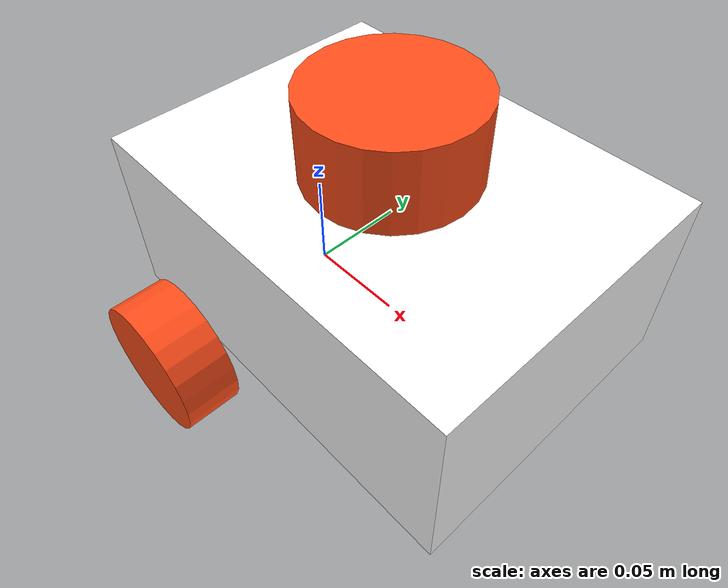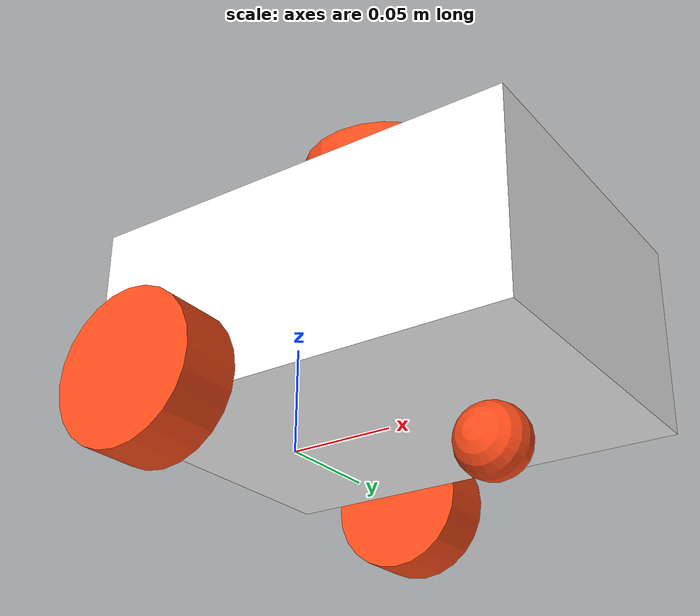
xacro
<robot xmlns:xacro="http://www.ros.org/wiki/xacro" name="mobile_robot">

  <!-- true: mock_components/GenericSystem instead of the esp32, see ros2_control.xacro -->
  <xacro:arg name="use_mock_hardware" default="false"/>

  <xacro:include filename="properties.xacro"/>
  <xacro:include filename="materials.xacro"/>
  <xacro:include filename="intertial_macros.xacro"/>
  <xacro:include filename="ros2_control.xacro"/>

  <link name="base_link">
  </link>

  <joint name="base_to_chassis" type="fixed">
    <parent link="base_link"/>
    <child link="chassis"/>
    <origin xyz="-${0.25 * chassis_length} 0 0" rpy="0 0 0"/>
  </joint>

  <link name="chassis">
    <visual>
      <origin xyz="${chassis_length / 2} 0 ${chassis_height / 2}" rpy="0 0 0"/>
      <geometry>
        <box size="${chassis_length} ${chassis_width} ${chassis_height}"/>
      </geometry>
      <material name="wood"/>
    </visual>
    <collision>
      <origin xyz="${chassis_length / 2} 0 ${chassis_height / 2}" rpy="0 0 0"/>
      <geometry>
        <box size="${chassis_length} ${chassis_width} ${chassis_height}"/>
      </geometry>
    </collision>
    <xacro:inertial_box mass="${chassis_mass}" x="${chassis_length}" y="${chassis_width}" z="${chassis_height}">
      <origin xyz="${chassis_length / 2} 0 ${chassis_height / 2}" rpy="0 0 0"/>
    </xacro:inertial_box>
  </link>

  <joint name="left_wheel_joint" type="continuous">
    <parent link="base_link"/>
    <child link="left_wheel"/>
    <origin xyz="0 ${chassis_width/2 + wheel_gap + wheel_length/2} 0" rpy="-${pi / 2} 0 0"/>
    <axis xyz="0 0 1"/>
  </joint>

  <joint name="right_wheel_joint" type="continuous">
    <parent link="base_link"/>
    <child link="right_wheel"/>
    <origin xyz="0 -${chassis_width/2 + wheel_gap + wheel_length/2} 0" rpy="${pi / 2} 0 0"/>
    <axis xyz="0 0 -1"/>
  </joint>

  <link name="left_wheel">
    <visual>
      <geometry>
        <cylinder length="${wheel_length}" radius="${wheel_radius}"/>
      </geometry>
      <material name="plastic"/>
    </visual>
    <collision>
      <geometry>
        <cylinder length="${wheel_length}" radius="${wheel_radius}"/>
      </geometry>
    </collision>
    <xacro:inertial_cylinder mass="${wheel_mass}" length="${wheel_length}" radius="${wheel_radius}">
      <origin xyz="0 0 0" rpy="0 0 0"/>
    </xacro:inertial_cylinder>
  </link>

  <link name="right_wheel">
    <visual>
      <geometry>
        <cylinder length="${wheel_length}" radius="${wheel_radius}"/>
      </geometry>
      <material name="plastic"/>
    </visual>
    <collision>
      <geometry>
        <cylinder length="${wheel_length}" radius="${wheel_radius}"/>
      </geometry>
    </collision>
    <xacro:inertial_cylinder mass="${wheel_mass}" length="${wheel_length}" radius="${wheel_radius}">
      <origin xyz="0 0 0" rpy="0 0 0"/>
    </xacro:inertial_cylinder>
  </link>

  <joint name="caster_wheel_joint" type="fixed">
    <parent link="chassis"/>
    <child link="caster_wheel"/>
    <origin xyz="${0.75 * chassis_length} 0 -${caster_wheel_radius}" rpy="${pi / 2} 0 0"/>
  </joint>

  <link name="caster_wheel">
    <visual>
      <geometry>
        <sphere radius="${caster_wheel_radius}"/>
      </geometry>
      <material name="plastic"/>
    </visual>
    <collision>
      <geometry>
        <sphere radius="${caster_wheel_radius}"/>
      </geometry>
    </collision>
    <xacro:inertial_sphere mass="${caster_wheel_mass}" radius="${caster_wheel_radius}">
      <origin xyz="0 0 0" rpy="0 0 0"/>
    </xacro:inertial_sphere>
  </link>

  <link name="imu">
    <visual>
      <geometry>
        <box size="${imu_length} ${imu_width} ${imu_height}"/>
      </geometry>
      <material name="plastic"/>
    </visual>
    <collision>
      <geometry>
        <box size="${imu_length} ${imu_width} ${imu_height}"/>
      </geometry>
    </collision>
    <xacro:inertial_box mass="${imu_mass}" x="${imu_length}" y="${imu_width}" z="${imu_height}">
      <origin xyz="0 0 0" rpy="0 0 0"/>
    </xacro:inertial_box>
  </link>

  <joint name="imu_joint" type="fixed">
    <parent link="chassis"/>
    <child link="imu"/>
    <origin xyz="${0.25 * chassis_length} 0 ${chassis_height / 2}" rpy="0 0 0"/>
  </joint>

  <link name="lidar">
    <visual>
      <geometry>
        <cylinder radius="${lidar_radius}" length="${lidar_height}"/>
      </geometry>
      <material name="plastic"/>
    </visual>
    <collision>
      <geometry>
        <cylinder radius="${lidar_radius}" length="${lidar_height}"/>
      </geometry>
    </collision>
    <xacro:inertial_cylinder mass="${lidar_mass}" length="${lidar_height}" radius="${lidar_radius}">
      <origin xyz="0 0 0" rpy="0 0 0"/>
    </xacro:inertial_cylinder>
  </link>

  <joint name="lidar_joint" type="fixed">
    <parent link="chassis"/>
    <child link="lidar"/>
    <origin xyz="${chassis_length / 2} 0 ${chassis_height + lidar_height/2}" rpy="0 0 0"/>
  </joint>

</robot>

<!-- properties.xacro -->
<robot xmlns:xacro="http://www.ros.org/wiki/xacro">

  <!-- robot properties -->
  <xacro:property name="chassis_length" value="0.20"/>
  <xacro:property name="chassis_width" value="0.15"/>
  <xacro:property name="chassis_height" value="0.09"/>
  <xacro:property name="chassis_mass" value="0.5"/>

  <xacro:property name="wheel_radius" value="0.0335"/>
  <xacro:property name="wheel_length" value="0.027"/>
  <xacro:property name="wheel_mass" value="0.1"/>
  <xacro:property name="wheel_gap" value="0.007"/>

  <xacro:property name="caster_wheel_radius" value="${wheel_radius/2}"/>
  <xacro:property name="caster_wheel_mass" value="0.1"/>

  <xacro:property name="imu_length" value="0.02"/>
  <xacro:property name="imu_width" value="0.02"/>
  <xacro:property name="imu_height" value="0.01"/>
  <xacro:property name="imu_mass" value="0.01"/>

  <xacro:property name="lidar_radius" value="0.04"/>
  <xacro:property name="lidar_height" value="0.04"/>
  <xacro:property name="lidar_mass" value="0.15"/>

</robot>

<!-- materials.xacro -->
<robot xmlns:xacro="http://www.ros.org/wiki/xacro">

  <material name="wood">
    <color rgba="1 1 1 1"/>
  </material>

  <material name="plastic">
    <color rgba="1 0.3 0.1 1"/>
  </material>

</robot>
